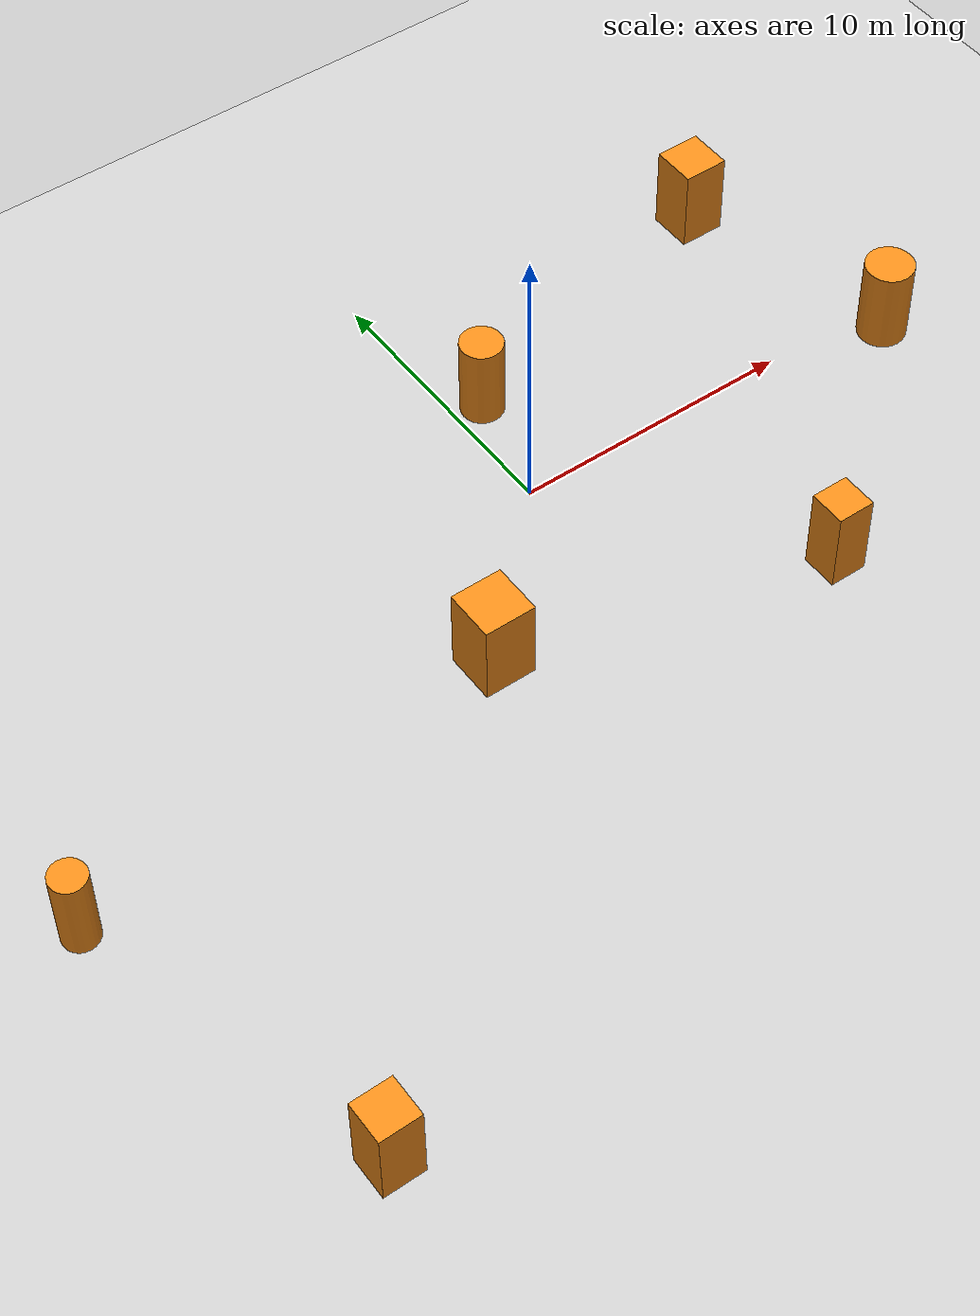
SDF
<sdf version='1.7'>
  <world name='default'>
    <light name='sun' type='directional'>
      <cast_shadows>1</cast_shadows>
      <pose>0 0 10 0 0 0</pose>
      <diffuse>0.8 0.8 0.8 1</diffuse>
      <specular>0.2 0.2 0.2 1</specular>
      <attenuation>
        <range>1000</range>
        <constant>0.9</constant>
        <linear>0.01</linear>
        <quadratic>0.001</quadratic>
      </attenuation>
      <direction>-0.5 0.1 -0.9</direction>
    </light>

    <model name='ground_plane'>
      <static>1</static>
      <link name='link'>
        <collision name='collision'>
          <geometry>
            <plane>
              <normal>0 0 1</normal>
              <size>50 50</size>
            </plane>
          </geometry>
          <surface>
            <friction>
              <ode>
                <mu>100</mu>
                <mu2>50</mu2>
              </ode>
            </friction>
          </surface>
        </collision>
        <visual name='visual'>
          <cast_shadows>0</cast_shadows>
          <geometry>
            <plane>
              <normal>0 0 1</normal>
              <size>50 50</size>
            </plane>
          </geometry>
          <material>
            <script>
              <uri>file://media/materials/scripts/gazebo.material</uri>
              <name>Gazebo/Grey</name>
            </script>
          </material>
        </visual>
      </link>
    </model>

    <gravity>0 0 -9.8</gravity>
    <magnetic_field>6e-06 2.3e-05 -4.2e-05</magnetic_field>
    <atmosphere type='adiabatic'/>
    <physics type='ode'>
      <max_step_size>0.001</max_step_size>
      <real_time_factor>1</real_time_factor>
      <real_time_update_rate>1000</real_time_update_rate>
    </physics>
    <scene>
      <ambient>0.4 0.4 0.4 1</ambient>
      <background>0.7 0.7 0.7 1</background>
      <shadows>1</shadows>
    </scene>

    <!-- Dynamic pillars publish true pose and twist through smoothPillarPathPlugin. -->
    <model name='dynamic_square_pillar_01'><pose>-17 -17 0 0 0 0</pose><static>0</static><link name='link'><gravity>0</gravity><inertial><mass>10</mass><inertia><ixx>1</ixx><iyy>1</iyy><izz>1</izz><ixy>0</ixy><ixz>0</ixz><iyz>0</iyz></inertia></inertial><collision name='collision'><pose>0 0 1.5 0 0 0</pose><geometry><box><size>1.4 1.4 3.0</size></box></geometry></collision><visual name='visual'><pose>0 0 1.5 0 0 0</pose><geometry><box><size>1.4 1.4 3.0</size></box></geometry><material><script><uri>file://media/materials/scripts/gazebo.material</uri><name>Gazebo/Orange</name></script></material></visual></link><plugin name='smooth_motion' filename='libsmoothPillarPathPlugin.so'><loop>false</loop><orientation>false</orientation><velocity_min>0.45</velocity_min><velocity_max>1.60</velocity_max><speed_period>6.0</speed_period><phase>0.0</phase><obstacle_type>square</obstacle_type><size>1.4</size><height>3.0</height><path><waypoint>-17 -17 0</waypoint><waypoint>-6 -17 0</waypoint></path></plugin></model>
    <model name='dynamic_cylinder_pillar_01'><pose>-20 -6 0 0 0 0</pose><static>0</static><link name='link'><gravity>0</gravity><inertial><mass>10</mass><inertia><ixx>1</ixx><iyy>1</iyy><izz>1</izz><ixy>0</ixy><ixz>0</ixz><iyz>0</iyz></inertia></inertial><collision name='collision'><pose>0 0 1.5 0 0 0</pose><geometry><cylinder><radius>0.6</radius><length>3.0</length></cylinder></geometry></collision><visual name='visual'><pose>0 0 1.5 0 0 0</pose><geometry><cylinder><radius>0.6</radius><length>3.0</length></cylinder></geometry><material><script><uri>file://media/materials/scripts/gazebo.material</uri><name>Gazebo/Orange</name></script></material></visual></link><plugin name='smooth_motion' filename='libsmoothPillarPathPlugin.so'><loop>false</loop><orientation>false</orientation><velocity_min>0.45</velocity_min><velocity_max>1.50</velocity_max><speed_period>7.0</speed_period><phase>1.0</phase><obstacle_type>cylinder</obstacle_type><size>1.2</size><height>3.0</height><path><waypoint>-20 -6 0</waypoint><waypoint>-20 6 0</waypoint></path></plugin></model>
    <model name='dynamic_square_pillar_02'><pose>-5 -5 0 0 0 0</pose><static>0</static><link name='link'><gravity>0</gravity><inertial><mass>10</mass><inertia><ixx>1</ixx><iyy>1</iyy><izz>1</izz><ixy>0</ixy><ixz>0</ixz><iyz>0</iyz></inertia></inertial><collision name='collision'><pose>0 0 1.5 0 0 0</pose><geometry><box><size>1.8 1.8 3.0</size></box></geometry></collision><visual name='visual'><pose>0 0 1.5 0 0 0</pose><geometry><box><size>1.8 1.8 3.0</size></box></geometry><material><script><uri>file://media/materials/scripts/gazebo.material</uri><name>Gazebo/Orange</name></script></material></visual></link><plugin name='smooth_motion' filename='libsmoothPillarPathPlugin.so'><loop>false</loop><orientation>false</orientation><velocity_min>0.55</velocity_min><velocity_max>2.00</velocity_max><speed_period>6.5</speed_period><phase>2.0</phase><obstacle_type>square</obstacle_type><size>1.8</size><height>3.0</height><path><waypoint>-5 -5 0</waypoint><waypoint>7 -5 0</waypoint></path></plugin></model>
    <model name='dynamic_cylinder_pillar_02'><pose>1 4 0 0 0 0</pose><static>0</static><link name='link'><gravity>0</gravity><inertial><mass>10</mass><inertia><ixx>1</ixx><iyy>1</iyy><izz>1</izz><ixy>0</ixy><ixz>0</ixz><iyz>0</iyz></inertia></inertial><collision name='collision'><pose>0 0 1.5 0 0 0</pose><geometry><cylinder><radius>0.75</radius><length>3.0</length></cylinder></geometry></collision><visual name='visual'><pose>0 0 1.5 0 0 0</pose><geometry><cylinder><radius>0.75</radius><length>3.0</length></cylinder></geometry><material><script><uri>file://media/materials/scripts/gazebo.material</uri><name>Gazebo/Orange</name></script></material></visual></link><plugin name='smooth_motion' filename='libsmoothPillarPathPlugin.so'><loop>false</loop><orientation>false</orientation><velocity_min>0.50</velocity_min><velocity_max>1.80</velocity_max><speed_period>7.5</speed_period><phase>3.0</phase><obstacle_type>cylinder</obstacle_type><size>1.5</size><height>3.0</height><path><waypoint>1 4 0</waypoint><waypoint>1 16 0</waypoint></path></plugin></model>
    <model name='dynamic_square_pillar_03'><pose>6 -8 0 0 0 0</pose><static>0</static><link name='link'><gravity>0</gravity><inertial><mass>10</mass><inertia><ixx>1</ixx><iyy>1</iyy><izz>1</izz><ixy>0</ixy><ixz>0</ixz><iyz>0</iyz></inertia></inertial><collision name='collision'><pose>0 0 1.5 0 0 0</pose><geometry><box><size>1.3 1.3 3.0</size></box></geometry></collision><visual name='visual'><pose>0 0 1.5 0 0 0</pose><geometry><box><size>1.3 1.3 3.0</size></box></geometry><material><script><uri>file://media/materials/scripts/gazebo.material</uri><name>Gazebo/Orange</name></script></material></visual></link><plugin name='smooth_motion' filename='libsmoothPillarPathPlugin.so'><loop>false</loop><orientation>false</orientation><velocity_min>0.55</velocity_min><velocity_max>1.90</velocity_max><speed_period>5.8</speed_period><phase>4.0</phase><obstacle_type>square</obstacle_type><size>1.3</size><height>3.0</height><path><waypoint>6 -8 0</waypoint><waypoint>17 -8 0</waypoint></path></plugin></model>
    <model name='dynamic_cylinder_pillar_03'><pose>14 -1 0 0 0 0</pose><static>0</static><link name='link'><gravity>0</gravity><inertial><mass>10</mass><inertia><ixx>1</ixx><iyy>1</iyy><izz>1</izz><ixy>0</ixy><ixz>0</ixz><iyz>0</iyz></inertia></inertial><collision name='collision'><pose>0 0 1.5 0 0 0</pose><geometry><cylinder><radius>0.85</radius><length>3.0</length></cylinder></geometry></collision><visual name='visual'><pose>0 0 1.5 0 0 0</pose><geometry><cylinder><radius>0.85</radius><length>3.0</length></cylinder></geometry><material><script><uri>file://media/materials/scripts/gazebo.material</uri><name>Gazebo/Orange</name></script></material></visual></link><plugin name='smooth_motion' filename='libsmoothPillarPathPlugin.so'><loop>false</loop><orientation>false</orientation><velocity_min>0.45</velocity_min><velocity_max>1.70</velocity_max><speed_period>7.2</speed_period><phase>5.0</phase><obstacle_type>cylinder</obstacle_type><size>1.7</size><height>3.0</height><path><waypoint>14 -1 0</waypoint><waypoint>14 10 0</waypoint></path></plugin></model>
    <model name='dynamic_square_pillar_04'><pose>12 7 0 0 0 0</pose><static>0</static><link name='link'><gravity>0</gravity><inertial><mass>10</mass><inertia><ixx>1</ixx><iyy>1</iyy><izz>1</izz><ixy>0</ixy><ixz>0</ixz><iyz>0</iyz></inertia></inertial><collision name='collision'><pose>0 0 1.5 0 0 0</pose><geometry><box><size>1.6 1.6 3.0</size></box></geometry></collision><visual name='visual'><pose>0 0 1.5 0 0 0</pose><geometry><box><size>1.6 1.6 3.0</size></box></geometry><material><script><uri>file://media/materials/scripts/gazebo.material</uri><name>Gazebo/Orange</name></script></material></visual></link><plugin name='smooth_motion' filename='libsmoothPillarPathPlugin.so'><loop>false</loop><orientation>false</orientation><velocity_min>0.50</velocity_min><velocity_max>1.80</velocity_max><speed_period>8.0</speed_period><phase>6.0</phase><obstacle_type>square</obstacle_type><size>1.6</size><height>3.0</height><path><waypoint>12 7 0</waypoint><waypoint>24 7 0</waypoint></path></plugin></model>
  </world>
</sdf>
